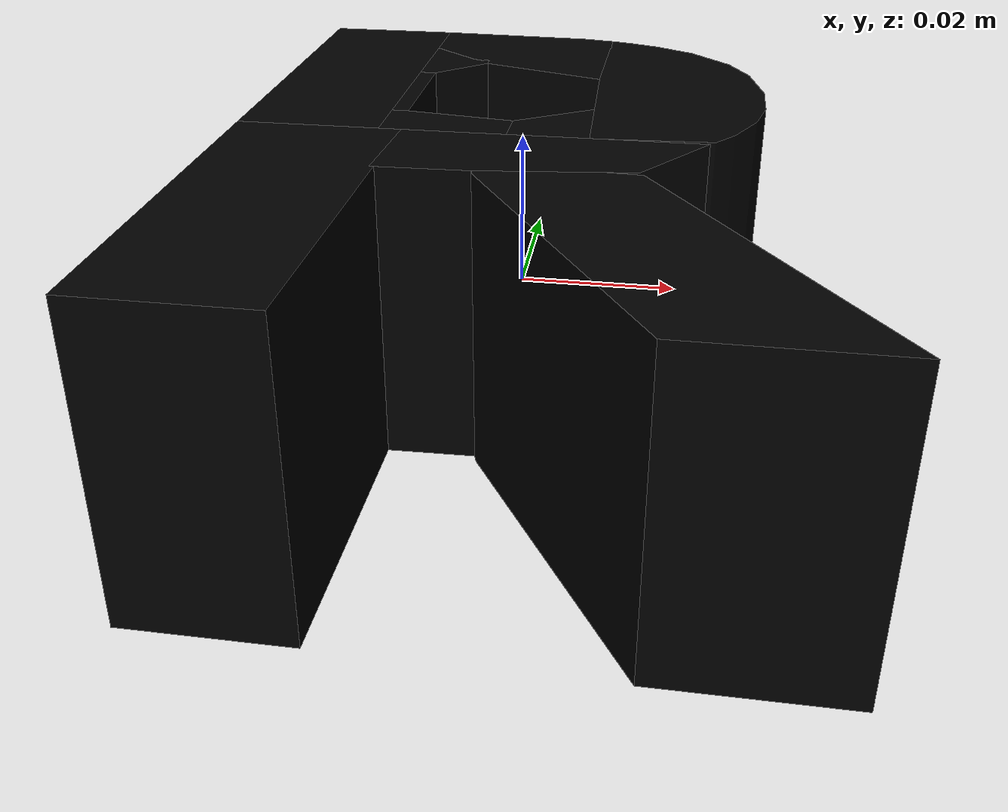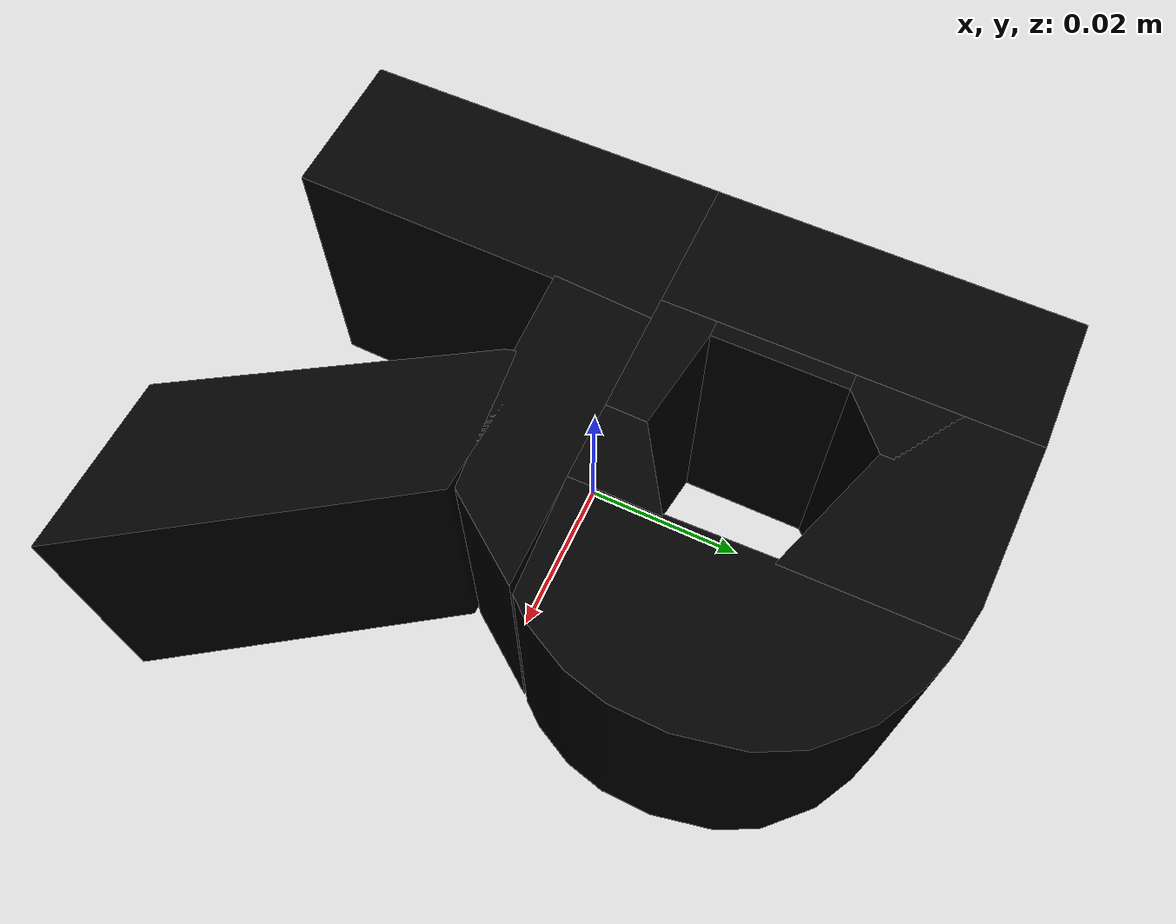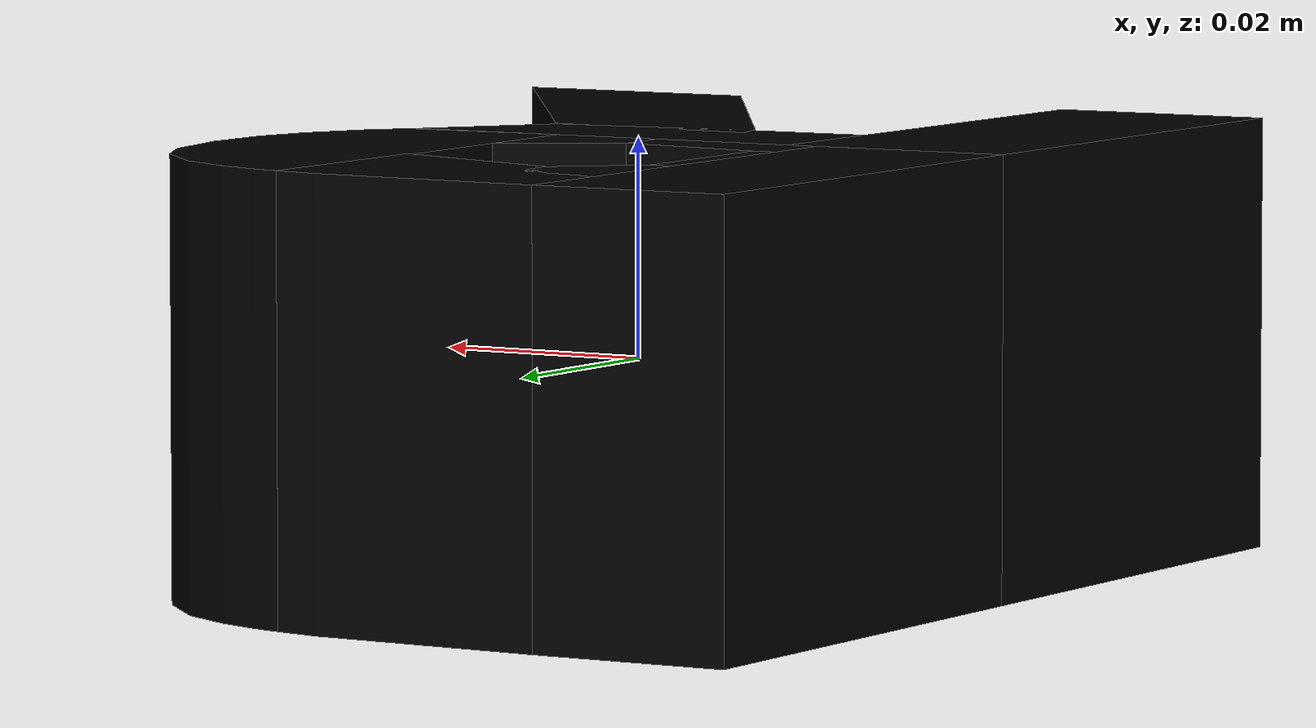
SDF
<?xml version='1.0' encoding='UTF-8'?>
<!-- This SDF was autogenerated by obj_to_drake_sdf.py -->
<sdf version="1.7">
  <model name="small_r">
    <link name="body">
      <inertial>
        <pose>0 0 0 0 0 0</pose>
        <mass>1</mass>
        <inertia>
          <ixx>0.00094787844</ixx>
          <iyy>0.00059017703</iyy>
          <izz>0.0012713888</izz>
          <ixy>4.1255775e-05</ixy>
          <ixz>-4.5958745e-21</ixz>
          <iyz>-5.3857905e-21</iyz>
        </inertia>
      </inertial>
      <visual name="convex_0">
        <pose>0 0 0 0 0 0</pose>
        <geometry>
          <mesh>
            <uri>small_r_convex_0.obj</uri>
          </mesh>
        </geometry>
        <material>
          <diffuse>0 0 0 1</diffuse>
        </material>
      </visual>
      <collision name="convex_0_volume">
        <pose>0 0 0 0 0 0</pose>
        <geometry>
          <mesh>
            <uri>small_r_convex_0.obj</uri>
          </mesh>
        </geometry>
        <drake:proximity_properties xmlns:drake="uri:drake">
          <drake:compliant_hydroelastic/>
          <drake:hydroelastic_modulus> 3.0e7 </drake:hydroelastic_modulus>
          <drake:mesh_resolution_hint> 0.18 </drake:mesh_resolution_hint>
          <drake:hunt_crossley_dissipation>10</drake:hunt_crossley_dissipation>
          <drake:mu_dynamic>0.3</drake:mu_dynamic>
        </drake:proximity_properties>
      </collision>
      <visual name="convex_1">
        <pose>0 0 0 0 0 0</pose>
        <geometry>
          <mesh>
            <uri>small_r_convex_1.obj</uri>
          </mesh>
        </geometry>
        <material>
          <diffuse>0 0 0 1</diffuse>
        </material>
      </visual>
      <collision name="convex_1_volume">
        <pose>0 0 0 0 0 0</pose>
        <geometry>
          <mesh>
            <uri>small_r_convex_1.obj</uri>
          </mesh>
        </geometry>
        <drake:proximity_properties xmlns:drake="uri:drake">
          <drake:compliant_hydroelastic/>
          <drake:hydroelastic_modulus> 3.0e7 </drake:hydroelastic_modulus>
          <drake:mesh_resolution_hint> 0.18 </drake:mesh_resolution_hint>
          <drake:hunt_crossley_dissipation>10</drake:hunt_crossley_dissipation>
          <drake:mu_dynamic>0.3</drake:mu_dynamic>
        </drake:proximity_properties>
      </collision>
      <visual name="convex_2">
        <pose>0 0 0 0 0 0</pose>
        <geometry>
          <mesh>
            <uri>small_r_convex_2.obj</uri>
          </mesh>
        </geometry>
        <material>
          <diffuse>0 0 0 1</diffuse>
        </material>
      </visual>
      <collision name="convex_2_volume">
        <pose>0 0 0 0 0 0</pose>
        <geometry>
          <mesh>
            <uri>small_r_convex_2.obj</uri>
          </mesh>
        </geometry>
        <drake:proximity_properties xmlns:drake="uri:drake">
          <drake:compliant_hydroelastic/>
          <drake:hydroelastic_modulus> 3.0e7 </drake:hydroelastic_modulus>
          <drake:mesh_resolution_hint> 0.18 </drake:mesh_resolution_hint>
          <drake:hunt_crossley_dissipation>10</drake:hunt_crossley_dissipation>
          <drake:mu_dynamic>0.3</drake:mu_dynamic>
        </drake:proximity_properties>
      </collision>
      <visual name="convex_3">
        <pose>0 0 0 0 0 0</pose>
        <geometry>
          <mesh>
            <uri>small_r_convex_3.obj</uri>
          </mesh>
        </geometry>
        <material>
          <diffuse>0 0 0 1</diffuse>
        </material>
      </visual>
      <collision name="convex_3_volume">
        <pose>0 0 0 0 0 0</pose>
        <geometry>
          <mesh>
            <uri>small_r_convex_3.obj</uri>
          </mesh>
        </geometry>
        <drake:proximity_properties xmlns:drake="uri:drake">
          <drake:compliant_hydroelastic/>
          <drake:hydroelastic_modulus> 3.0e7 </drake:hydroelastic_modulus>
          <drake:mesh_resolution_hint> 0.18 </drake:mesh_resolution_hint>
          <drake:hunt_crossley_dissipation>10</drake:hunt_crossley_dissipation>
          <drake:mu_dynamic>0.3</drake:mu_dynamic>
        </drake:proximity_properties>
      </collision>
      <visual name="convex_4">
        <pose>0 0 0 0 0 0</pose>
        <geometry>
          <mesh>
            <uri>small_r_convex_4.obj</uri>
          </mesh>
        </geometry>
        <material>
          <diffuse>0 0 0 1</diffuse>
        </material>
      </visual>
      <collision name="convex_4_volume">
        <pose>0 0 0 0 0 0</pose>
        <geometry>
          <mesh>
            <uri>small_r_convex_4.obj</uri>
          </mesh>
        </geometry>
        <drake:proximity_properties xmlns:drake="uri:drake">
          <drake:compliant_hydroelastic/>
          <drake:hydroelastic_modulus> 3.0e7 </drake:hydroelastic_modulus>
          <drake:mesh_resolution_hint> 0.18 </drake:mesh_resolution_hint>
          <drake:hunt_crossley_dissipation>10</drake:hunt_crossley_dissipation>
          <drake:mu_dynamic>0.3</drake:mu_dynamic>
        </drake:proximity_properties>
      </collision>
      <visual name="convex_5">
        <pose>0 0 0 0 0 0</pose>
        <geometry>
          <mesh>
            <uri>small_r_convex_5.obj</uri>
          </mesh>
        </geometry>
        <material>
          <diffuse>0 0 0 1</diffuse>
        </material>
      </visual>
      <collision name="convex_5_volume">
        <pose>0 0 0 0 0 0</pose>
        <geometry>
          <mesh>
            <uri>small_r_convex_5.obj</uri>
          </mesh>
        </geometry>
        <drake:proximity_properties xmlns:drake="uri:drake">
          <drake:compliant_hydroelastic/>
          <drake:hydroelastic_modulus> 3.0e7 </drake:hydroelastic_modulus>
          <drake:mesh_resolution_hint> 0.18 </drake:mesh_resolution_hint>
          <drake:hunt_crossley_dissipation>10</drake:hunt_crossley_dissipation>
          <drake:mu_dynamic>0.3</drake:mu_dynamic>
        </drake:proximity_properties>
      </collision>
      <visual name="convex_6">
        <pose>0 0 0 0 0 0</pose>
        <geometry>
          <mesh>
            <uri>small_r_convex_6.obj</uri>
          </mesh>
        </geometry>
        <material>
          <diffuse>0 0 0 1</diffuse>
        </material>
      </visual>
      <collision name="convex_6_volume">
        <pose>0 0 0 0 0 0</pose>
        <geometry>
          <mesh>
            <uri>small_r_convex_6.obj</uri>
          </mesh>
        </geometry>
        <drake:proximity_properties xmlns:drake="uri:drake">
          <drake:compliant_hydroelastic/>
          <drake:hydroelastic_modulus> 3.0e7 </drake:hydroelastic_modulus>
          <drake:mesh_resolution_hint> 0.18 </drake:mesh_resolution_hint>
          <drake:hunt_crossley_dissipation>10</drake:hunt_crossley_dissipation>
          <drake:mu_dynamic>0.3</drake:mu_dynamic>
        </drake:proximity_properties>
      </collision>
      <visual name="convex_7">
        <pose>0 0 0 0 0 0</pose>
        <geometry>
          <mesh>
            <uri>small_r_convex_7.obj</uri>
          </mesh>
        </geometry>
        <material>
          <diffuse>0 0 0 1</diffuse>
        </material>
      </visual>
      <collision name="convex_7_volume">
        <pose>0 0 0 0 0 0</pose>
        <geometry>
          <mesh>
            <uri>small_r_convex_7.obj</uri>
          </mesh>
        </geometry>
        <drake:proximity_properties xmlns:drake="uri:drake">
          <drake:compliant_hydroelastic/>
          <drake:hydroelastic_modulus> 3.0e7 </drake:hydroelastic_modulus>
          <drake:mesh_resolution_hint> 0.18 </drake:mesh_resolution_hint>
          <drake:hunt_crossley_dissipation>10</drake:hunt_crossley_dissipation>
          <drake:mu_dynamic>0.3</drake:mu_dynamic>
        </drake:proximity_properties>
      </collision>
      <visual name="convex_8">
        <pose>0 0 0 0 0 0</pose>
        <geometry>
          <mesh>
            <uri>small_r_convex_8.obj</uri>
          </mesh>
        </geometry>
        <material>
          <diffuse>0 0 0 1</diffuse>
        </material>
      </visual>
      <collision name="convex_8_volume">
        <pose>0 0 0 0 0 0</pose>
        <geometry>
          <mesh>
            <uri>small_r_convex_8.obj</uri>
          </mesh>
        </geometry>
        <drake:proximity_properties xmlns:drake="uri:drake">
          <drake:compliant_hydroelastic/>
          <drake:hydroelastic_modulus> 3.0e7 </drake:hydroelastic_modulus>
          <drake:mesh_resolution_hint> 0.18 </drake:mesh_resolution_hint>
          <drake:hunt_crossley_dissipation>10</drake:hunt_crossley_dissipation>
          <drake:mu_dynamic>0.3</drake:mu_dynamic>
        </drake:proximity_properties>
      </collision>
      <visual name="convex_9">
        <pose>0 0 0 0 0 0</pose>
        <geometry>
          <mesh>
            <uri>small_r_convex_9.obj</uri>
          </mesh>
        </geometry>
        <material>
          <diffuse>0 0 0 1</diffuse>
        </material>
      </visual>
      <collision name="convex_9_volume">
        <pose>0 0 0 0 0 0</pose>
        <geometry>
          <mesh>
            <uri>small_r_convex_9.obj</uri>
          </mesh>
        </geometry>
        <drake:proximity_properties xmlns:drake="uri:drake">
          <drake:compliant_hydroelastic/>
          <drake:hydroelastic_modulus> 3.0e7 </drake:hydroelastic_modulus>
          <drake:mesh_resolution_hint> 0.18 </drake:mesh_resolution_hint>
          <drake:hunt_crossley_dissipation>10</drake:hunt_crossley_dissipation>
          <drake:mu_dynamic>0.3</drake:mu_dynamic>
        </drake:proximity_properties>
      </collision>
    </link>
  </model>
</sdf>
